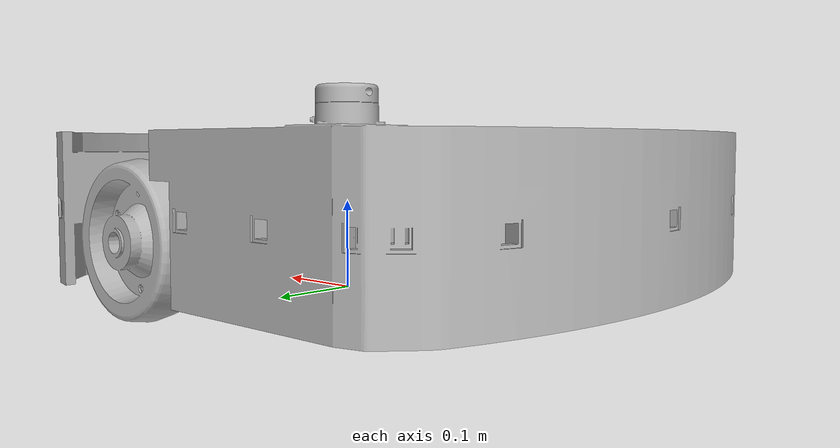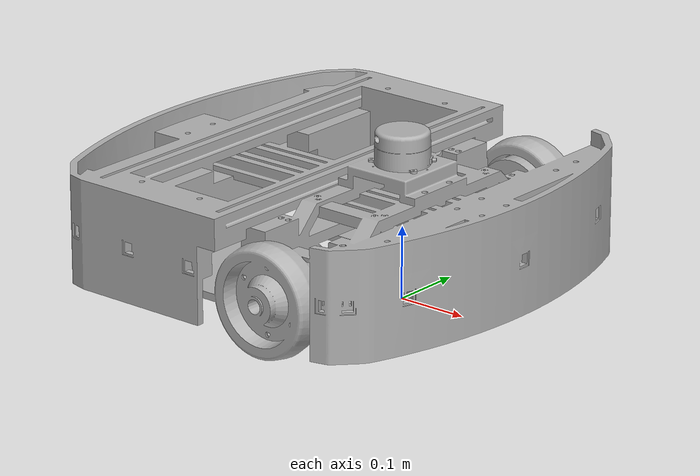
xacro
<?xml version="1.0" ?>
<robot name="comobot" xmlns:xacro="http://www.ros.org/wiki/xacro">

<xacro:include filename="$(find como_urdf)/urdf/materials.xacro" />

<link name="base_link">
  <inertial>
    <origin xyz="-0.11116681296334317 2.4438031969407686e-07 0.10795957199598556" rpy="0 0 0"/>
    <mass value="13.634730617679848"/>
    <inertia ixx="0.475183" iyy="0.438473" izz="0.868845" ixy="-0.000109" iyz="-0.0" ixz="0.003459"/>
  </inertial>
  <visual>
    <origin xyz="0 0 0" rpy="0 0 0"/>
    <geometry>
      <mesh filename="package://como_urdf/meshes/base_link.stl" scale="0.001 0.001 0.001"/>
    </geometry>
    <material name="silver"/>
  </visual>
  <collision>
    <origin xyz="0 0 0" rpy="0 0 0"/>
    <geometry>
      <mesh filename="package://como_urdf/meshes/base_link.stl" scale="0.001 0.001 0.001"/>
    </geometry>
  </collision>
</link>

<link name="base_scan">
  <inertial>
    <origin xyz="-0.00012003535987023445 0.0005134412924180124 0.022186860841184652" rpy="0 0 0"/>
    <mass value="0.18368341137526367"/>
    <inertia ixx="9.4e-05" iyy="9.3e-05" izz="0.000122" ixy="-0.0" iyz="-1e-06" ixz="0.0"/>
  </inertial>
  <visual>
    <origin xyz="0.0 -0.0 -0.187147" rpy="0 0 0"/>
    <geometry>
      <mesh filename="package://como_urdf/meshes/laser_scan.stl" scale="0.001 0.001 0.001"/>
    </geometry>
    <material name="silver"/>
  </visual>
  <collision>
    <origin xyz="0.0 -0.0 -0.187147" rpy="0 0 0"/>
    <geometry>
      <mesh filename="package://como_urdf/meshes/laser_scan.stl" scale="0.001 0.001 0.001"/>
    </geometry>
  </collision>
</link>

<joint name="joint1" type="fixed">
  <origin xyz="0.0 0.0 0.187147" rpy="0 0 -1.0472"/>
  <parent link="base_link"/>
  <child link="base_scan"/>
</joint>

<!-- ToF -->
  <link name="ToF1">
  </link>
  <joint name="ToF1_joint" type="fixed">
    <origin rpy="0 0 0" xyz="0.17516 0.0 0.102147"/>
    <parent link="base_link"/>
    <child link="ToF1"/>
  </joint>

  <link name="ToF2">
  </link>
  <joint name="ToF2_joint" type="fixed">
    <origin rpy="0 0 0.122173" xyz="0.153406 0.191503 0.102147"/>
    <parent link="base_link"/>
    <child link="ToF2"/>
  </joint>

  <link name="ToF3">
  </link>
  <joint name="ToF3_joint" type="fixed">
    <origin rpy="0 0 0.807564" xyz="0.126565 0.262076 0.102147"/>
    <parent link="base_link"/>
    <child link="ToF3"/>
  </joint>

  <link name="ToF4">
  </link>
  <joint name="ToF4_joint" type="fixed">
    <origin rpy="0 0 1.335177" xyz="0.104187 0.279599 0.102147"/>
    <parent link="base_link"/>
    <child link="ToF4"/>
  </joint>

  <link name="ToF5">
  </link>
  <joint name="ToF5_joint" type="fixed">
    <origin rpy="0 0 1.5708" xyz="-0.104187 0.282544 0.102147"/>
    <parent link="base_link"/>
    <child link="ToF5"/>
  </joint>

  <link name="ToF6">
  </link>
  <joint name="ToF6_joint" type="fixed">
    <origin rpy="0 0 1.5708" xyz="-0.21204 0.282544 0.102147"/>
    <parent link="base_link"/>
    <child link="ToF6"/>
  </joint>

  <link name="ToF7">
  </link>
  <joint name="ToF7_joint" type="fixed">
    <origin rpy="0 0 1.806765" xyz="-0.304194 0.279587 0.102147"/>
    <parent link="base_link"/>
    <child link="ToF7"/>
  </joint>

  <link name="ToF8">
  </link>
  <joint name="ToF8_joint" type="fixed">
    <origin rpy="0 0 2.378360" xyz="-0.326568 0.262069 0.102147"/>
    <parent link="base_link"/>
    <child link="ToF8"/>
  </joint>

  <link name="ToF9">
  </link>
  <joint name="ToF9_joint" type="fixed">
    <origin rpy="0 0 2.84489" xyz="-0.358406 0.191503 0.102147"/>
    <parent link="base_link"/>
    <child link="ToF9"/>
  </joint>

  <link name="ToF10">
  </link>
  <joint name="ToF10_joint" type="fixed">
    <origin rpy="0 0 3.141592" xyz="-0.37516 0.0 0.102147"/>
    <parent link="base_link"/>
    <child link="ToF10"/>
  </joint>

  <link name="ToF11">
  </link>
  <joint name="ToF11_joint" type="fixed">
    <origin rpy="0 0 -2.84489" xyz="-0.358406 -0.191503 0.102147"/>
    <parent link="base_link"/>
    <child link="ToF11"/>
  </joint>

  <link name="ToF12">
  </link>
  <joint name="ToF12_joint" type="fixed">
    <origin rpy="0 0 -2.378360" xyz="-0.326568 -0.262069 0.102147"/>
    <parent link="base_link"/>
    <child link="ToF12"/>
  </joint>

  <link name="ToF13">
  </link>
  <joint name="ToF13_joint" type="fixed">
    <origin rpy="0 0 -1.806765" xyz="-0.304194 -0.279587 0.102147"/>
    <parent link="base_link"/>
    <child link="ToF13"/>
  </joint>

  <link name="ToF14">
  </link>
  <joint name="ToF14_joint" type="fixed">
    <origin rpy="0 0 -1.5708" xyz="-0.21204 -0.282544 0.102147"/>
    <parent link="base_link"/>
    <child link="ToF14"/>
  </joint>

  <link name="ToF15">
  </link>
  <joint name="ToF15_joint" type="fixed">
    <origin rpy="0 0 -1.5708" xyz="-0.104187 -0.282544 0.102147"/>
    <parent link="base_link"/>
    <child link="ToF15"/>
  </joint>

  <link name="ToF16">
  </link>
  <joint name="ToF16_joint" type="fixed">
    <origin rpy="0 0 -1.335177" xyz="0.104187 -0.279599 0.102147"/>
    <parent link="base_link"/>
    <child link="ToF16"/>
  </joint>

  <link name="ToF17">
  </link>
  <joint name="ToF17_joint" type="fixed">
    <origin rpy="0 0 -0.807564" xyz="0.126565 -0.262076 0.102147"/>
    <parent link="base_link"/>
    <child link="ToF17"/>
  </joint>

  <link name="ToF18">
  </link>
  <joint name="ToF18_joint" type="fixed">
    <origin rpy="0 0 -0.122173" xyz="0.153406 -0.191503 0.102147"/>
    <parent link="base_link"/>
    <child link="ToF18"/>
  </joint>

</robot>

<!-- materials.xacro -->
<robot name="comobot" xmlns:xacro="http://www.ros.org/wiki/xacro" >

<material name="silver">
  <color rgba="0.700 0.700 0.700 1.000"/>
</material>

</robot>
